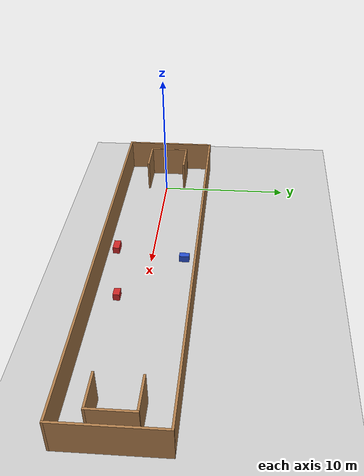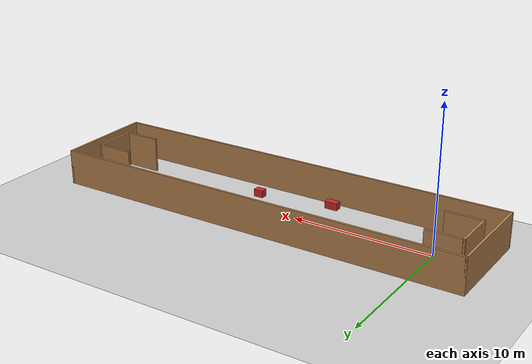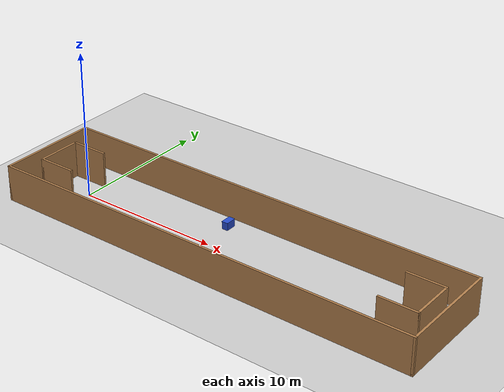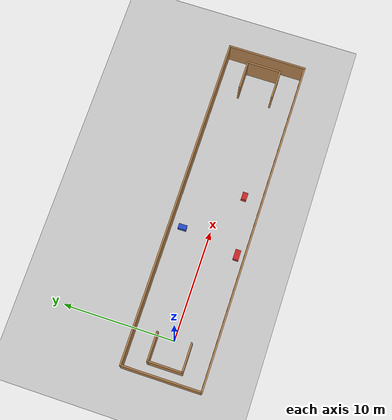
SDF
<sdf version="1.7">
 <world name="default">
  <light name="sun" type="directional">
   <pose>0 0 10 0 -0 0</pose>
   <diffuse>0.8 0.8 0.8 1</diffuse>
   <specular>0.2 0.2 0.2 1</specular>
   <attenuation>
    <range>1000</range>
    <constant>0.9</constant>
    <linear>0.01</linear>
    <quadratic>0.001</quadratic>
   </attenuation>
   <direction>-0.5 0.1 -0.9</direction>
   <spot><inner_angle>0</inner_angle><outer_angle>0</outer_angle><falloff>0</falloff></spot>
  </light>
  <model name="ground_plane">
   <static>1</static>
   <link name="link">
    <collision name="collision">
     <geometry><plane><normal>0 0 1</normal><size>100 100</size></plane></geometry>
     <surface>
      <contact><collide_bitmask>65535</collide_bitmask></contact>
      <friction><ode><mu>100</mu><mu2>50</mu2></ode></friction>
     </surface>
    </collision>
    <visual name="visual">
     <cast_shadows>0</cast_shadows>
     <geometry><plane><normal>0 0 1</normal><size>100 100</size></plane></geometry>
     <material>
      <script><uri>file://media/materials/scripts/gazebo.material</uri><name>Gazebo/Grey</name></script>
     </material>
    </visual>
   </link>
  </model>
  <gravity>0 0 -9.8</gravity>
  <magnetic_field>6e-06 2.3e-05 -4.2e-05</magnetic_field>
  <atmosphere type="adiabatic"/>
  <physics type="ode">
   <max_step_size>0.001</max_step_size>
   <real_time_factor>1</real_time_factor>
   <real_time_update_rate>1000</real_time_update_rate>
  </physics>
  <scene><ambient>0.4 0.4 0.4 1</ambient><background>0.7 0.7 0.7 1</background><shadows>1</shadows></scene>
  <spherical_coordinates>
   <surface_model>EARTH_WGS84</surface_model>
   <latitude_deg>0</latitude_deg>
   <longitude_deg>0</longitude_deg>
   <elevation>0</elevation>
   <heading_deg>0</heading_deg>
  </spherical_coordinates>
  <model name="my_base_walls">
   <link name="Wall_0">
    <collision name="Wall_0_Collision">
     <geometry><box><size>7.15 0.15 2.5</size></box></geometry>
     <pose>0 0 1.25 0 -0 0</pose>
    </collision>
    <visual name="Wall_0_Visual">
     <pose>0 0 1.25 0 -0 0</pose>
     <geometry><box><size>7.15 0.15 2.5</size></box></geometry>
     <material>
      <script><uri>file://media/materials/scripts/gazebo.material</uri><name>Gazebo/Wood</name></script>
      <ambient>1 1 1 1</ambient>
     </material>
     <meta><layer>0</layer></meta>
    </visual>
    <pose>-15 0 0 0 -0 1.5708</pose>
   </link>
   <link name="Wall_10">
    <collision name="Wall_10_Collision">
     <geometry><box><size>2.65 0.15 2.5</size></box></geometry>
     <pose>0 0 1.25 0 -0 0</pose>
    </collision>
    <visual name="Wall_10_Visual">
     <pose>0 0 1.25 0 -0 0</pose>
     <geometry><box><size>2.65 0.15 2.5</size></box></geometry>
     <material>
      <script><uri>file://media/materials/scripts/gazebo.material</uri><name>Gazebo/Wood</name></script>
      <ambient>1 1 1 1</ambient>
     </material>
     <meta><layer>0</layer></meta>
    </visual>
    <pose>-12.75 -1.5 0 0 -0 0</pose>
   </link>
   <link name="Wall_12">
    <collision name="Wall_12_Collision">
     <geometry><box><size>2.65 0.15 2.5</size></box></geometry>
     <pose>0 0 1.25 0 -0 0</pose>
    </collision>
    <visual name="Wall_12_Visual">
     <pose>0 0 1.25 0 -0 0</pose>
     <geometry><box><size>2.65 0.15 2.5</size></box></geometry>
     <material>
      <script><uri>file://media/materials/scripts/gazebo.material</uri><name>Gazebo/Wood</name></script>
      <ambient>1 1 1 1</ambient>
     </material>
     <meta><layer>0</layer></meta>
    </visual>
    <pose>-12.75 1.5 0 0 -0 0</pose>
   </link>
   <link name="Wall_14">
    <collision name="Wall_14_Collision">
     <geometry><box><size>3.15 0.15 2.5</size></box></geometry>
     <pose>0 0 1.25 0 -0 0</pose>
    </collision>
    <visual name="Wall_14_Visual">
     <pose>0 0 1.25 0 -0 0</pose>
     <geometry><box><size>3.15 0.15 2.5</size></box></geometry>
     <material>
      <script><uri>file://media/materials/scripts/gazebo.material</uri><name>Gazebo/Wood</name></script>
      <ambient>1 1 1 1</ambient>
     </material>
     <meta><layer>0</layer></meta>
    </visual>
    <pose>14 0 0 0 -0 -1.5708</pose>
   </link>
   <link name="Wall_15">
    <collision name="Wall_15_Collision">
     <geometry><box><size>2.65 0.15 2.5</size></box></geometry>
     <pose>0 0 1.25 0 -0 0</pose>
    </collision>
    <visual name="Wall_15_Visual">
     <pose>0 0 1.25 0 -0 0</pose>
     <geometry><box><size>2.65 0.15 2.5</size></box></geometry>
     <material>
      <script><uri>file://media/materials/scripts/gazebo.material</uri><name>Gazebo/Wood</name></script>
      <ambient>1 1 1 1</ambient>
     </material>
     <meta><layer>0</layer></meta>
    </visual>
    <pose>12.75 -1.5 0 0 -0 3.14159</pose>
   </link>
   <link name="Wall_17">
    <collision name="Wall_17_Collision">
     <geometry><box><size>2.65 0.15 2.5</size></box></geometry>
     <pose>0 0 1.25 0 -0 0</pose>
    </collision>
    <visual name="Wall_17_Visual">
     <pose>0 0 1.25 0 -0 0</pose>
     <geometry><box><size>2.65 0.15 2.5</size></box></geometry>
     <material>
      <script><uri>file://media/materials/scripts/gazebo.material</uri><name>Gazebo/Wood</name></script>
      <ambient>1 1 1 1</ambient>
     </material>
     <meta><layer>0</layer></meta>
    </visual>
    <pose>12.75 1.5 0 0 -0 3.14159</pose>
   </link>
   <link name="Wall_2">
    <collision name="Wall_2_Collision">
     <geometry><box><size>30.15 0.15 2.5</size></box></geometry>
     <pose>0 0 1.25 0 -0 0</pose>
    </collision>
    <visual name="Wall_2_Visual">
     <pose>0 0 1.25 0 -0 0</pose>
     <geometry><box><size>30.15 0.15 2.5</size></box></geometry>
     <material>
      <script><uri>file://media/materials/scripts/gazebo.material</uri><name>Gazebo/Wood</name></script>
      <ambient>1 1 1 1</ambient>
     </material>
     <meta><layer>0</layer></meta>
    </visual>
    <pose>-0 -3.5 0 0 -0 0</pose>
   </link>
   <link name="Wall_4">
    <collision name="Wall_4_Collision">
     <geometry><box><size>30.15 0.15 2.5</size></box></geometry>
     <pose>0 0 1.25 0 -0 0</pose>
    </collision>
    <visual name="Wall_4_Visual">
     <pose>0 0 1.25 0 -0 0</pose>
     <geometry><box><size>30.15 0.15 2.5</size></box></geometry>
     <material>
      <script><uri>file://media/materials/scripts/gazebo.material</uri><name>Gazebo/Wood</name></script>
      <ambient>1 1 1 1</ambient>
     </material>
     <meta><layer>0</layer></meta>
    </visual>
    <pose>-0 3.5 0 0 -0 0</pose>
   </link>
   <link name="Wall_6">
    <collision name="Wall_6_Collision">
     <geometry><box><size>7.15 0.15 2.5</size></box></geometry>
     <pose>0 0 1.25 0 -0 0</pose>
    </collision>
    <visual name="Wall_6_Visual">
     <pose>0 0 1.25 0 -0 0</pose>
     <geometry><box><size>7.15 0.15 2.5</size></box></geometry>
     <material>
      <script><uri>file://media/materials/scripts/gazebo.material</uri><name>Gazebo/Wood</name></script>
      <ambient>1 1 1 1</ambient>
     </material>
     <meta><layer>0</layer></meta>
    </visual>
    <pose>15 0 0 0 -0 -1.5708</pose>
   </link>
   <link name="Wall_9">
    <collision name="Wall_9_Collision">
     <geometry><box><size>3.15 0.15 2.5</size></box></geometry>
     <pose>0 0 1.25 0 -0 0</pose>
    </collision>
    <visual name="Wall_9_Visual">
     <pose>0 0 1.25 0 -0 0</pose>
     <geometry><box><size>3.15 0.15 2.5</size></box></geometry>
     <material>
      <script><uri>file://media/materials/scripts/gazebo.material</uri><name>Gazebo/Wood</name></script>
      <ambient>1 1 1 1</ambient>
     </material>
     <meta><layer>0</layer></meta>
    </visual>
    <pose>-14 0 0 0 -0 -1.5708</pose>
   </link>
   <static>1</static>
   <pose>11.5 0 0 0 -0 0</pose>
  </model>
  <model name="moving_box_1">
   <pose>14.030872933152136 -1.881826631914722 0 0 0 0</pose>
   <link name="link">
    <collision name="collision">
     <geometry><box><size>0.6836957452788814 0.4740675554435615 1</size></box></geometry>
     <surface><friction><ode><mu>0.1</mu><mu2>0.1</mu2></ode></friction></surface>
    </collision>
    <visual name="visual">
     <geometry><box><size>0.6836957452788814 0.4740675554435615 1</size></box></geometry>
     <material>
      <script><uri>file://media/materials/scripts/gazebo.material</uri><name>Gazebo/Red</name></script>
     </material>
    </visual>
   </link>
   <plugin name="move_box_plugin_1" filename="/home/otonom/fgm_ws/devel/lib/libmove_box_plugin.so">
    <velocity>0.1047958245675652 0.1308975175904808 0</velocity>
   </plugin>
  </model>
  <model name="moving_box_2">
   <pose>8.749870947320733 -2.817688668557029 0 0 0 0</pose>
   <link name="link">
    <collision name="collision">
     <geometry><box><size>0.9171656231205527 0.49673807228989075 1</size></box></geometry>
     <surface><friction><ode><mu>0.1</mu><mu2>0.1</mu2></ode></friction></surface>
    </collision>
    <visual name="visual">
     <geometry><box><size>0.9171656231205527 0.49673807228989075 1</size></box></geometry>
     <material>
      <script><uri>file://media/materials/scripts/gazebo.material</uri><name>Gazebo/Red</name></script>
     </material>
    </visual>
   </link>
   <plugin name="move_box_plugin_2" filename="/home/otonom/fgm_ws/devel/lib/libmove_box_plugin.so">
    <velocity>-0.07119474232810905 0.17528650713168048 0</velocity>
   </plugin>
  </model>
  <model name="moving_box_3">
   <pose>9.646806695205496 2.4563172077548563 0 0 0 0</pose>
   <link name="link">
    <collision name="collision">
     <geometry><box><size>0.4392394473445007 0.7468068082980314 1</size></box></geometry>
     <surface><friction><ode><mu>0.1</mu><mu2>0.1</mu2></ode></friction></surface>
    </collision>
    <visual name="visual">
     <geometry><box><size>0.4392394473445007 0.7468068082980314 1</size></box></geometry>
     <material>
      <script><uri>file://media/materials/scripts/gazebo.material</uri><name>Gazebo/Blue</name></script>
     </material>
    </visual>
   </link>
   <plugin name="move_box_plugin_3" filename="/home/otonom/fgm_ws/devel/lib/libmove_box_plugin.so">
    <velocity>0 0 0</velocity>
   </plugin>
  </model>
 </world>
</sdf>
